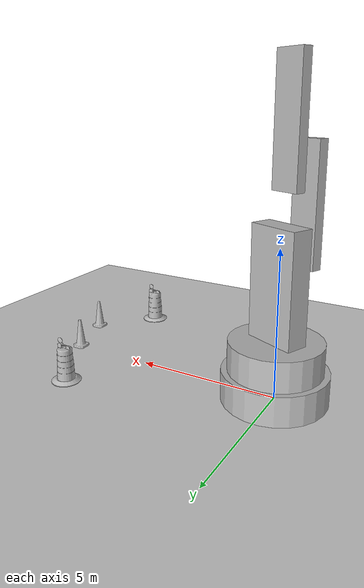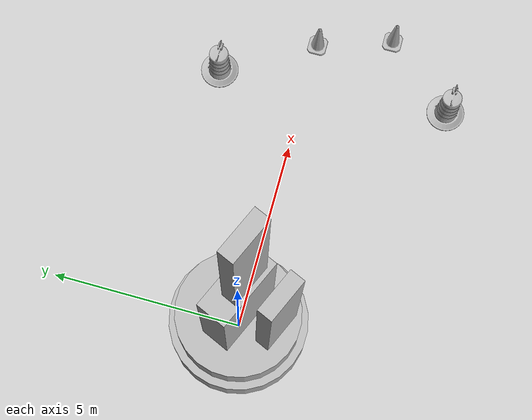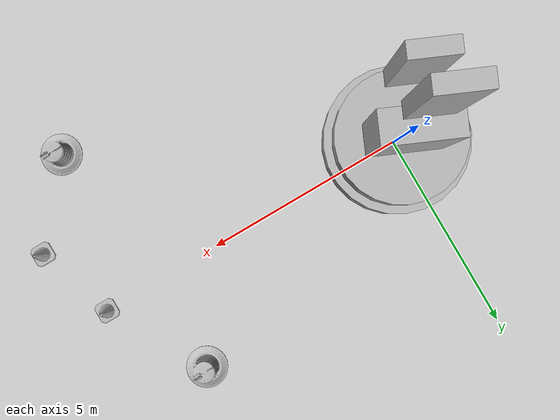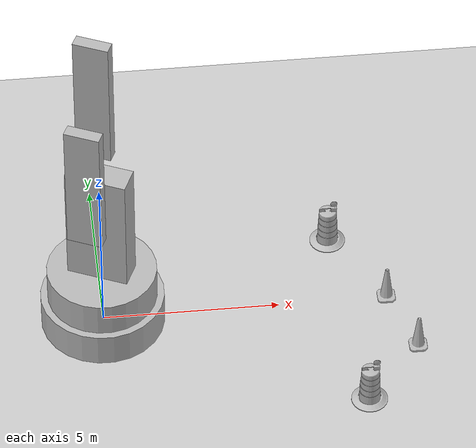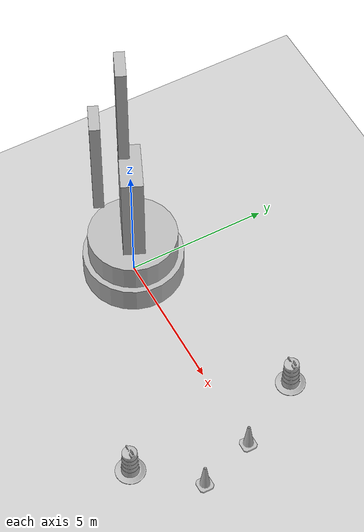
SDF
<sdf version="1.6">
 <world name="default">
  <light name="sun" type="directional">
   <pose>0 0 10 0 -0 0</pose>
   <diffuse>0.8 0.8 0.8 1</diffuse>
   <specular>0.2 0.2 0.2 1</specular>
   <attenuation>
    <range>1000</range>
    <constant>0.9</constant>
    <linear>0.01</linear>
    <quadratic>0.001</quadratic>
   </attenuation>
   <direction>-0.5 0.1 -0.9</direction>
  </light>
  <model name="ground_plane">
   <static>1</static>
   <link name="link">
    <collision name="collision">
     <geometry><plane><normal>0 0 1</normal><size>100 100</size></plane></geometry>
     <surface>
      <contact><collide_bitmask>65535</collide_bitmask></contact>
      <friction><ode><mu>100</mu><mu2>50</mu2></ode></friction>
     </surface>
    </collision>
    <visual name="visual">
     <cast_shadows>0</cast_shadows>
     <geometry><plane><normal>0 0 1</normal><size>100 100</size></plane></geometry>
     <material>
      <script><uri>file://media/materials/scripts/gazebo.material</uri><name>Gazebo/Grey</name></script>
     </material>
    </visual>
   </link>
  </model>
  <gravity>0 0 -9.8</gravity>
  <magnetic_field>6e-06 2.3e-05 -4.2e-05</magnetic_field>
  <atmosphere type="adiabatic"/>
  <physics name="default_physics" default="0" type="ode">
   <max_step_size>0.001</max_step_size>
   <real_time_factor>1</real_time_factor>
   <real_time_update_rate>1000</real_time_update_rate>
  </physics>
  <scene><ambient>0.4 0.4 0.4 1</ambient><background>0.7 0.7 0.7 1</background><shadows>1</shadows></scene>
  <spherical_coordinates>
   <surface_model>EARTH_WGS84</surface_model>
   <latitude_deg>0</latitude_deg>
   <longitude_deg>0</longitude_deg>
   <elevation>0</elevation>
   <heading_deg>0</heading_deg>
  </spherical_coordinates>
  <model name="Construction Barrel">
   <link name="link">
    <inertial>
     <pose>0 0 0.4 0 -0 0</pose>
     <mass>500</mass>
     <inertia><ixx>51.2096</ixx><iyy>51.2096</iyy><izz>25</izz><ixy>0</ixy><ixz>0</ixz><iyz>0</iyz></inertia>
    </inertial>
    <collision name="collision">
     <geometry><mesh><uri>model://construction_barrel/meshes/construction_barrel.dae</uri></mesh></geometry>
    </collision>
    <visual name="visual">
     <geometry><mesh><uri>model://construction_barrel/meshes/construction_barrel.dae</uri></mesh></geometry>
    </visual>
   </link>
   <pose>6.67209 2.41114 -0 0 -8e-06 -4e-06</pose>
  </model>
  <model name="Construction Cone">
   <link name="link">
    <collision name="collision">
     <geometry>
      <mesh><scale>10 10 10</scale><uri>model://construction_cone/meshes/construction_cone.dae</uri></mesh>
     </geometry>
    </collision>
    <visual name="visual">
     <geometry>
      <mesh><scale>10 10 10</scale><uri>model://construction_cone/meshes/construction_cone.dae</uri></mesh>
     </geometry>
    </visual>
    <inertial>
     <inertia><ixx>1</ixx><ixy>0</ixy><ixz>0</ixz><iyy>1</iyy><iyz>0</iyz><izz>1</izz></inertia>
     <mass>1</mass>
    </inertial>
   </link>
   <pose>8.07263 0.002528 -8e-06 2e-06 -0 0</pose>
  </model>
  <model name="Construction Cone_0">
   <link name="link">
    <collision name="collision">
     <geometry>
      <mesh><scale>10 10 10</scale><uri>model://construction_cone/meshes/construction_cone.dae</uri></mesh>
     </geometry>
    </collision>
    <visual name="visual">
     <geometry>
      <mesh><scale>10 10 10</scale><uri>model://construction_cone/meshes/construction_cone.dae</uri></mesh>
     </geometry>
    </visual>
    <inertial>
     <inertia><ixx>1</ixx><ixy>0</ixy><ixz>0</ixz><iyy>1</iyy><iyz>0</iyz><izz>1</izz></inertia>
     <mass>1</mass>
    </inertial>
   </link>
   <pose>8.71919 -1.97014 -8e-06 2e-06 -0 0</pose>
  </model>
  <model name="Construction Barrel_0">
   <link name="link">
    <inertial>
     <pose>0 0 0.4 0 -0 0</pose>
     <mass>500</mass>
     <inertia><ixx>51.2096</ixx><iyy>51.2096</iyy><izz>25</izz><ixy>0</ixy><ixz>0</ixz><iyz>0</iyz></inertia>
    </inertial>
    <collision name="collision">
     <geometry><mesh><uri>model://construction_barrel/meshes/construction_barrel.dae</uri></mesh></geometry>
    </collision>
    <visual name="visual">
     <geometry><mesh><uri>model://construction_barrel/meshes/construction_barrel.dae</uri></mesh></geometry>
    </visual>
   </link>
   <pose>7.1056 -3.84013 -0 0 -8e-06 -4e-06</pose>
  </model>
  <model name="robotic_arm">
   <link name="bottom_base_link">
    <inertial>
     <pose>0 0 0.05 0 -0 0</pose>
     <mass>12</mass>
     <inertia><ixx>2.26</ixx><ixy>0</ixy><ixz>0</ixz><iyy>6.26</iyy><iyz>0</iyz><izz>8.6</izz></inertia>
    </inertial>
    <collision name="bottom_base_link_collision">
     <pose>0 0 1.01 0 -0 0</pose>
     <geometry><cylinder><length>2.02</length><radius>1.75</radius></cylinder></geometry>
    </collision>
    <visual name="bottom_base_link_visual">
     <pose>0 0 0.505 0 -0 0</pose>
     <geometry><cylinder><length>1.01</length><radius>1.75</radius></cylinder></geometry>
    </visual>
   </link>
   <link name="top_base_link">
    <pose>0 0 1.01 0 -0 0</pose>
    <inertial>
     <pose>0 0 0.555 0 -0 0</pose>
     <mass>24</mass>
     <inertia><ixx>10.6406</ixx><ixy>0</ixy><ixz>0</ixz><iyy>18.6406</iyy><iyz>0</iyz><izz>17.2</izz></inertia>
    </inertial>
    <collision name="top_base_link_collision">
     <pose>0 0 0.505 0 -0 0</pose>
     <geometry><cylinder><length>2.02</length><radius>1.55</radius></cylinder></geometry>
    </collision>
    <collision name="top_base_link_fixed_joint_lump__arm_segment_1_link_collision_1">
     <pose>0 0 2.71 0 -0 0</pose>
     <geometry><box><size>1.75 0.75 4</size></box></geometry>
    </collision>
    <visual name="top_base_link_visual">
     <pose>0 0 0.505 0 -0 0</pose>
     <geometry><cylinder><length>1.01</length><radius>1.55</radius></cylinder></geometry>
    </visual>
    <visual name="top_base_link_fixed_joint_lump__arm_segment_1_link_visual_1">
     <pose>0 0 2.71 0 -0 0</pose>
     <geometry><box><size>1.75 0.75 4</size></box></geometry>
    </visual>
   </link>
   <joint name="base_joint" type="revolute">
    <child>top_base_link</child>
    <parent>bottom_base_link</parent>
    <axis>
     <xyz>0 0 1</xyz>
     <limit><lower>0</lower><upper>3.14</upper><effort>100</effort><velocity>100</velocity></limit>
     <dynamics><spring_reference>0</spring_reference><spring_stiffness>0</spring_stiffness></dynamics>
     <use_parent_model_frame>0</use_parent_model_frame>
    </axis>
   </joint>
   <link name="arm_segment_2_link">
    <pose>0 -0.375 5.23 0 -0 0</pose>
    <inertial>
     <pose>0 -0.725 1 0 -0 0</pose>
     <mass>12</mass>
     <inertia><ixx>2.26</ixx><ixy>0</ixy><ixz>0</ixz><iyy>6.26</iyy><iyz>0</iyz><izz>8.6</izz></inertia>
    </inertial>
    <collision name="arm_segment_2_link_collision">
     <pose>0 -0.725 1 0 -0 0</pose>
     <geometry><box><size>1 0.35 4</size></box></geometry>
    </collision>
    <visual name="arm_segment_2_link_visual">
     <pose>0 -0.725 1 0 -0 0</pose>
     <geometry><box><size>1 0.35 4</size></box></geometry>
    </visual>
   </link>
   <joint name="arm_segment_2" type="revolute">
    <child>arm_segment_2_link</child>
    <parent>top_base_link</parent>
    <axis>
     <xyz>0 1 0</xyz>
     <limit><lower>0</lower><upper>3.14</upper><effort>100</effort><velocity>100</velocity></limit>
     <dynamics><spring_reference>0</spring_reference><spring_stiffness>0</spring_stiffness></dynamics>
     <use_parent_model_frame>0</use_parent_model_frame>
    </axis>
   </joint>
   <link name="arm_segment_3_link">
    <pose>0 -0.925 7.71 0 -0 0</pose>
    <inertial>
     <pose>0 0.715 2 0 -0 0</pose>
     <mass>24</mass>
     <inertia><ixx>28.52</ixx><ixy>0</ixy><ixz>0</ixz><iyy>36.52</iyy><iyz>0</iyz><izz>17.2</izz></inertia>
    </inertial>
    <collision name="arm_segment_3_link_collision">
     <pose>0 0.715 1 0 -0 0</pose>
     <geometry><box><size>1 0.35 4</size></box></geometry>
    </collision>
    <collision name="arm_segment_3_link_fixed_joint_lump__end_of_arm_tool_link_collision_1">
     <pose>0 0.715 3 0 -0 0</pose>
     <geometry><box><size>0 0 0</size></box></geometry>
    </collision>
    <visual name="arm_segment_3_link_visual">
     <pose>0 0.715 1 0 -0 0</pose>
     <geometry><box><size>1 0.35 4</size></box></geometry>
    </visual>
    <visual name="arm_segment_3_link_fixed_joint_lump__end_of_arm_tool_link_visual_1">
     <pose>0 0.715 3 0 -0 0</pose>
     <geometry><box><size>0 0 0</size></box></geometry>
    </visual>
    <sensor name="my_camera" type="camera">
     <update_rate>20</update_rate>
     <visualize>1</visualize>
     <camera name="cam">
      <horizontal_fov>1.39626</horizontal_fov>
      <image><width>640</width><height>480</height><format>R8B8G8</format></image>
      <clip><near>0.02</near><far>300</far></clip>
      <noise><type>gaussian</type><mean>0</mean><stddev>0.007</stddev></noise>
     </camera>
     <plugin name="camera_controller" filename="gazebo_ros_camera.so">
      <alwaysOn>1</alwaysOn>
      <frameName>camera_link_optical</frameName>
      <minDepth>0.1</minDepth>
      <maxDepth>500</maxDepth>
      <robotNamespace>/</robotNamespace>
     </plugin>
     <pose>-1 0.715 2.7 3.14159 -1.57079 3.14139</pose>
    </sensor>
   </link>
   <joint name="arm_segment_3" type="revolute">
    <child>arm_segment_3_link</child>
    <parent>arm_segment_2_link</parent>
    <axis>
     <xyz>0 1 0</xyz>
     <limit><lower>0</lower><upper>3.14</upper><effort>100</effort><velocity>100</velocity></limit>
     <dynamics><spring_reference>0</spring_reference><spring_stiffness>0</spring_stiffness></dynamics>
     <use_parent_model_frame>0</use_parent_model_frame>
    </axis>
   </joint>
   <static>0</static>
   <plugin name="gazebo_ros_joint_state_publisher" filename="gazebo_ros_joint_state_publisher.so">
    <updateRate>20</updateRate>
    <jointName>base_joint, arm_segment_2, arm_segment_3</jointName>
    <alwaysOn>1</alwaysOn>
    <robotNamespace>/</robotNamespace>
   </plugin>
   <pose>-0.000286 0.004609 0.002496 -0.000518 0.001329 -0.417284</pose>
  </model>
 </world>
</sdf>
